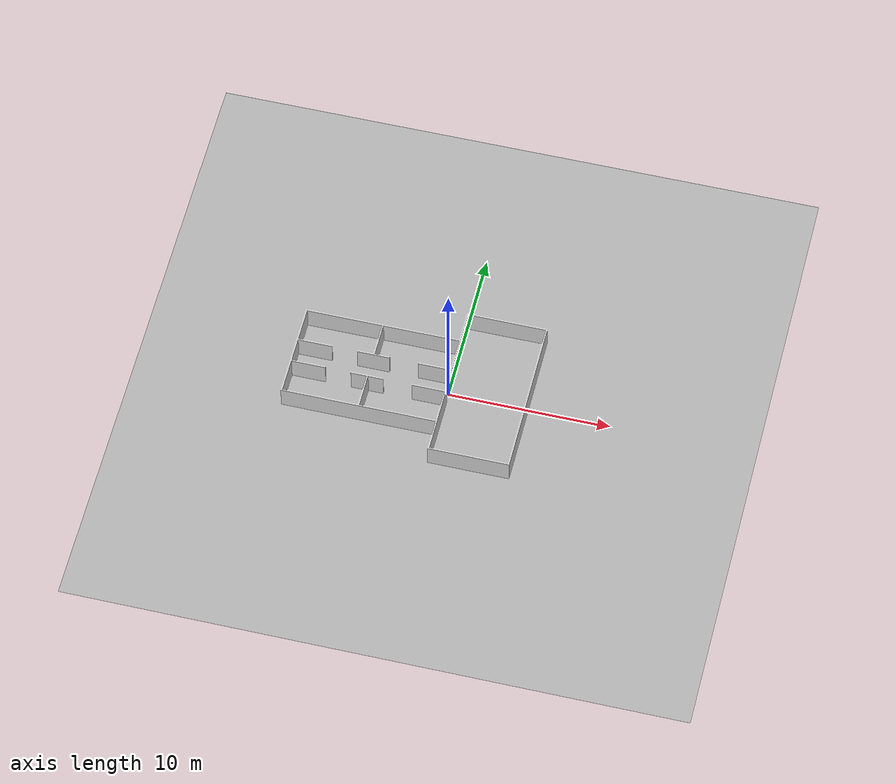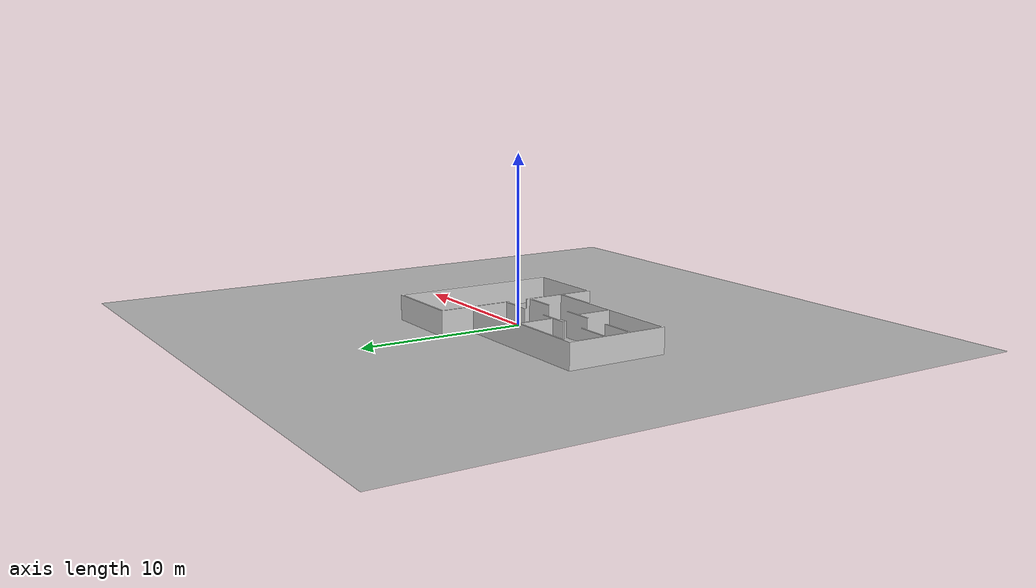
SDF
<?xml version="1.0" ?>
<sdf version="1.5">
  <model name="straight_corridor_short/">
    <static>true</static>
    <pose>0 0 0 0 0 0</pose>
    <link name="walls">
      <collision name="collision">
        <geometry>
          <mesh>
            <uri>model://straight_corridor_short/meshes/straight_corridor_short_fused.dae</uri>
          </mesh>
        </geometry>
      </collision>
      <visual name="visual">
        <geometry>
          <mesh>
            <uri>model://straight_corridor_short/meshes/straight_corridor_short_fused.dae</uri>
          </mesh>
        </geometry>
        <cast_shadows>false</cast_shadows>
      </visual>
    </link>
  </model>
</sdf>
